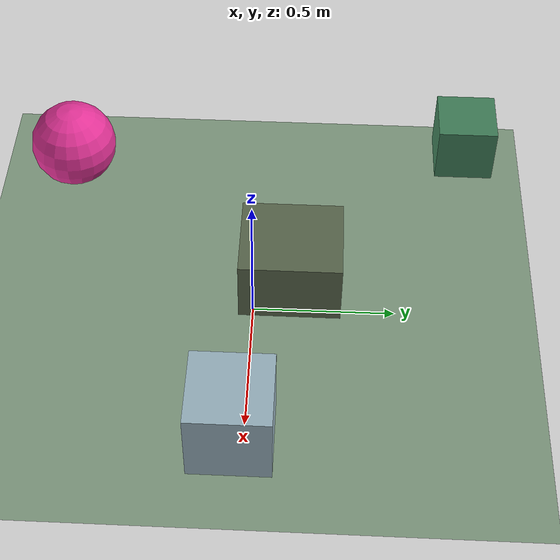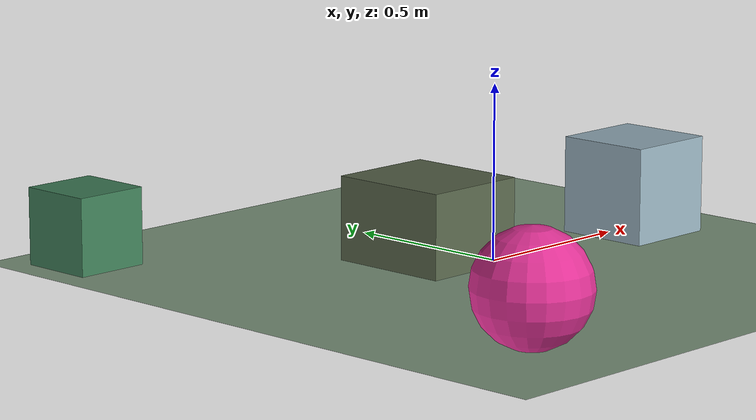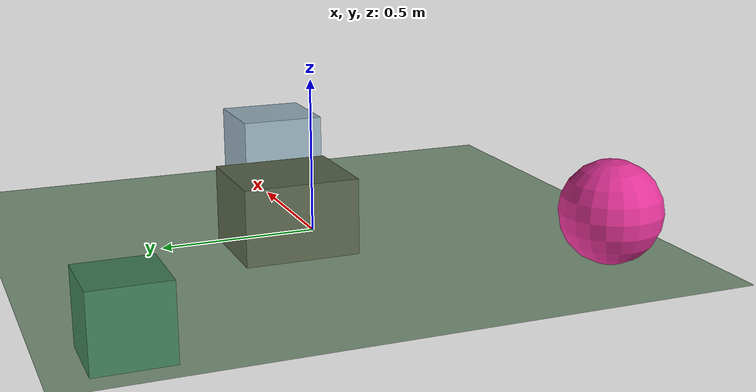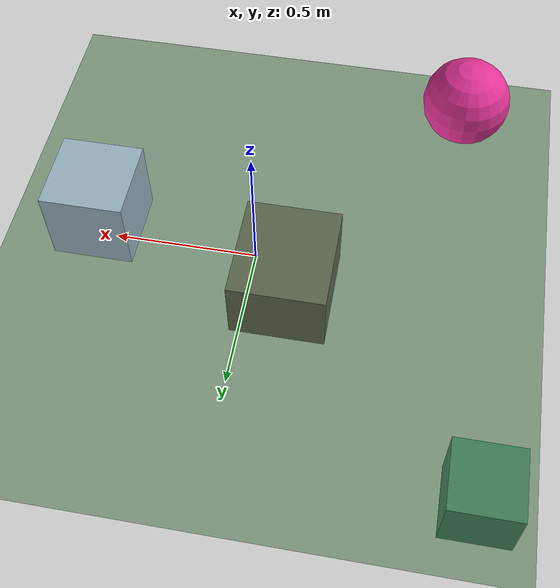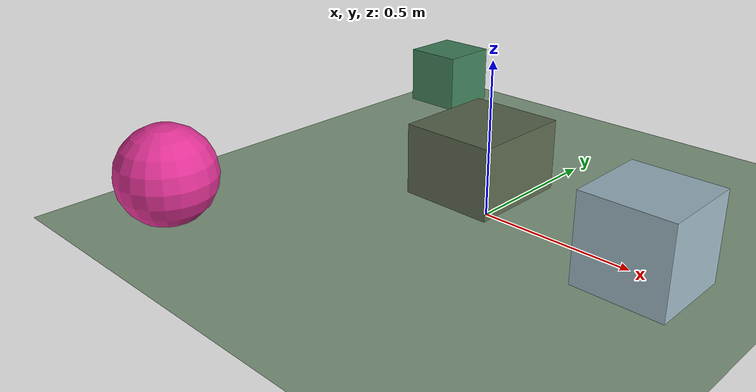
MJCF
<mujoco>
   <asset>
<texture type="skybox" builtin="gradient" rgb1="0.6 0.7 0.1" rgb2="0.8 0.0 0.8" width="256" height="256"/>
<texture name="gradient_0" builtin="gradient" rgb1="0.7 0.0 0.2" rgb2="0.0 0.8 0.4" width="200" height="200"/>
<texture name="gradient_1" builtin="gradient" rgb1="0.4 0.9 0.6" rgb2="0.1 0.1 0.1" width="200" height="200"/>
<texture name="flat_2" builtin="flat" rgb1="0.9 0.2 0.6" rgb2="0.9 0.2 0.6"  width="200" height="200"/>
<texture name="checker_3" builtin="checker" type="2d" rgb1="0.8 0.9 0.9" rgb2="0.4 0.5 0.6" width="200" height="200"/><material name="gradient_0_mat" reflectance="0" texture="gradient_0" texuniform="true"/>
<material name="gradient_1_mat" reflectance="0" texture="gradient_1" texuniform="true"/>
<material name="flat_2_mat" reflectance="0" texture="flat_2" texuniform="true"/>
<material name="checker_3_mat" reflectance="0" texrepeat="4 4" texture="checker_3" texuniform="false" />
   </asset>

   <worldbody>
      <light diffuse=".9 .9 .9" pos="0 0 3" dir="0 0 -1"/>
     <geom type="plane" size="1 1 0.1" rgba="0.5 0.6 0.5 1"/>
<geom type="box" pos="-0.13 0.13 0.12" size="0.16 0.18 0.12" material="gradient_0_mat" />
<geom type="box" pos="-0.82 0.78 0.11" size="0.11 0.11 0.11" material="gradient_1_mat" />
<geom type="sphere" pos="-0.66 -0.72 0.16" size="0.16 0.16 0.16" material="flat_2_mat" />
<geom type="box" pos="0.56 -0.04 0.14" size="0.14 0.14 0.14" material="checker_3_mat" /><camera euler="60 0 180" fovy="60" name="camera_a" pos="0 -1.5 1"></camera>   </worldbody>
</mujoco>
